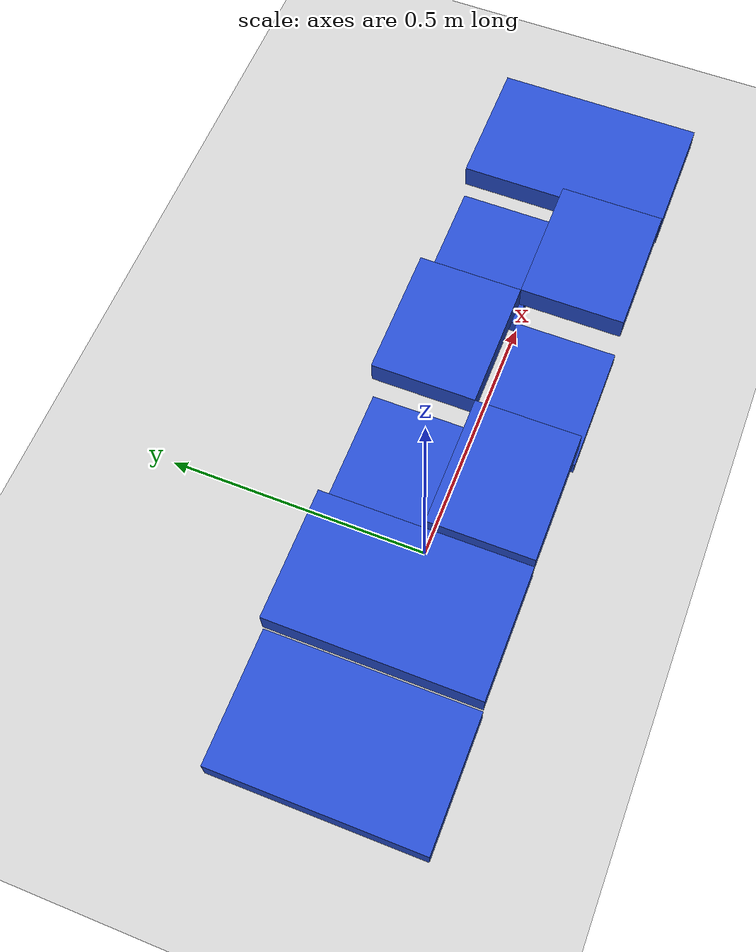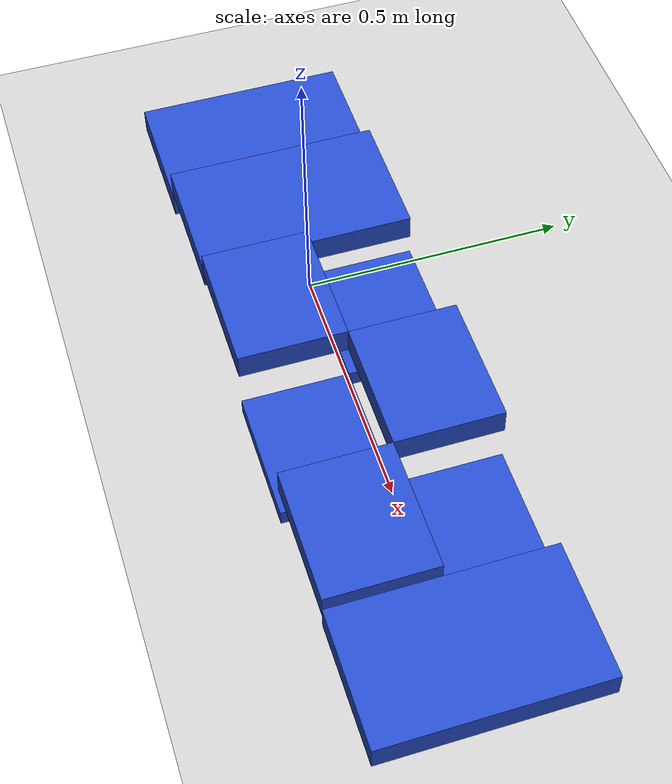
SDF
<?xml version="1.0" ?>
<sdf version="1.4">
    <world name="default">
        <physics type="ode">
            <gravity>0 0 -9.81</gravity>
            <ode>
                <solver>
                    <type>quick</type>
                    <iters>50</iters>
                    <sor>1.4</sor>
                </solver>
                <constraints>
                    <cfm>0.0</cfm>
                    <erp>0.2</erp>
                    <contact_max_correcting_vel>100.0</contact_max_correcting_vel>
                    <contact_surface_layer>0.0</contact_surface_layer>
                </constraints>
            </ode>
            <real_time_update_rate>1000</real_time_update_rate>
            <max_step_size>0.001</max_step_size>
        </physics>
        <!-- A global light source -->
        <include>
            <uri>model://sun</uri>
        </include>
        <!-- A ground plane -->
        <include>
            <uri>model://ground_plane</uri>
        </include>
        <model name="rectangle_6">
            <pose>-0.125000 0.000000 0.095000 0.000000 0.000000 0.000000</pose>
            <static>true</static>
            <link name="rectangle_6_body">
                <inertial>
                    <mass>1.0</mass>
                    <inertia>
                        <ixx>1.0</ixx>
                        <ixy>0.0</ixy>
                        <ixz>0.0</ixz>
                        <iyy>1.0</iyy>
                        <iyz>0.0</iyz>
                        <izz>1.0</izz>
                    </inertia>
                </inertial>
                <collision name="collision">
                    <geometry>
                        <box>
                            <size>0.250000 0.400000 0.050000</size>
                        </box>
                    </geometry>
                    <surface>
                        <friction>
                            <ode>
                                <mu>0.9</mu>
                                <mu2>0.9</mu2>
                            </ode>
                        </friction>
                    </surface>
                </collision>
                <visual name="visual">
                    <geometry>
                        <box>
                            <size>0.250000 0.400000 0.050000</size>
                        </box>
                    </geometry>
                    <material>
                        <script>
                            <uri>file://media/materials/scripts/gazebo.material</uri>
                            <name>Gazebo/Blue</name>
                        </script>
                    </material>
                </visual>
            </link>
        </model>
        <model name="rectangle_8">
            <pose>-0.375000 0.000000 0.035000 0.000000 0.000000 0.000000</pose>
            <static>true</static>
            <link name="rectangle_8_body">
                <inertial>
                    <mass>1.0</mass>
                    <inertia>
                        <ixx>1.0</ixx>
                        <ixy>0.0</ixy>
                        <ixz>0.0</ixz>
                        <iyy>1.0</iyy>
                        <iyz>0.0</iyz>
                        <izz>1.0</izz>
                    </inertia>
                </inertial>
                <collision name="collision">
                    <geometry>
                        <box>
                            <size>0.250000 0.400000 0.050000</size>
                        </box>
                    </geometry>
                    <surface>
                        <friction>
                            <ode>
                                <mu>0.9</mu>
                                <mu2>0.9</mu2>
                            </ode>
                        </friction>
                    </surface>
                </collision>
                <visual name="visual">
                    <geometry>
                        <box>
                            <size>0.250000 0.400000 0.050000</size>
                        </box>
                    </geometry>
                    <material>
                        <script>
                            <uri>file://media/materials/scripts/gazebo.material</uri>
                            <name>Gazebo/Blue</name>
                        </script>
                    </material>
                </visual>
            </link>
        </model>
        <model name="rectangle_0">
            <pose>0.125000 0.100000 0.005000 0.000000 0.000000 0.000000</pose>
            <static>true</static>
            <link name="rectangle_0_body">
                <inertial>
                    <mass>1.0</mass>
                    <inertia>
                        <ixx>1.0</ixx>
                        <ixy>0.0</ixy>
                        <ixz>0.0</ixz>
                        <iyy>1.0</iyy>
                        <iyz>0.0</iyz>
                        <izz>1.0</izz>
                    </inertia>
                </inertial>
                <collision name="collision">
                    <geometry>
                        <box>
                            <size>0.250000 0.200000 0.050000</size>
                        </box>
                    </geometry>
                    <surface>
                        <friction>
                            <ode>
                                <mu>0.9</mu>
                                <mu2>0.9</mu2>
                            </ode>
                        </friction>
                    </surface>
                </collision>
                <visual name="visual">
                    <geometry>
                        <box>
                            <size>0.250000 0.200000 0.050000</size>
                        </box>
                    </geometry>
                    <material>
                        <script>
                            <uri>file://media/materials/scripts/gazebo.material</uri>
                            <name>Gazebo/Blue</name>
                        </script>
                    </material>
                </visual>
            </link>
        </model>
        <model name="rectangle_1">
            <pose>0.125000 -0.100000 0.125000 0.000000 0.000000 0.000000</pose>
            <static>true</static>
            <link name="rectangle_1_body">
                <inertial>
                    <mass>1.0</mass>
                    <inertia>
                        <ixx>1.0</ixx>
                        <ixy>0.0</ixy>
                        <ixz>0.0</ixz>
                        <iyy>1.0</iyy>
                        <iyz>0.0</iyz>
                        <izz>1.0</izz>
                    </inertia>
                </inertial>
                <collision name="collision">
                    <geometry>
                        <box>
                            <size>0.250000 0.200000 0.050000</size>
                        </box>
                    </geometry>
                    <surface>
                        <friction>
                            <ode>
                                <mu>0.9</mu>
                                <mu2>0.9</mu2>
                            </ode>
                        </friction>
                    </surface>
                </collision>
                <visual name="visual">
                    <geometry>
                        <box>
                            <size>0.250000 0.200000 0.050000</size>
                        </box>
                    </geometry>
                    <material>
                        <script>
                            <uri>file://media/materials/scripts/gazebo.material</uri>
                            <name>Gazebo/Blue</name>
                        </script>
                    </material>
                </visual>
            </link>
        </model>
        <model name="rectangle_2">
            <pose>0.375000 0.100000 0.125000 0.000000 0.000000 0.000000</pose>
            <static>true</static>
            <link name="rectangle_2_body">
                <inertial>
                    <mass>1.0</mass>
                    <inertia>
                        <ixx>1.0</ixx>
                        <ixy>0.0</ixy>
                        <ixz>0.0</ixz>
                        <iyy>1.0</iyy>
                        <iyz>0.0</iyz>
                        <izz>1.0</izz>
                    </inertia>
                </inertial>
                <collision name="collision">
                    <geometry>
                        <box>
                            <size>0.250000 0.200000 0.050000</size>
                        </box>
                    </geometry>
                    <surface>
                        <friction>
                            <ode>
                                <mu>0.9</mu>
                                <mu2>0.9</mu2>
                            </ode>
                        </friction>
                    </surface>
                </collision>
                <visual name="visual">
                    <geometry>
                        <box>
                            <size>0.250000 0.200000 0.050000</size>
                        </box>
                    </geometry>
                    <material>
                        <script>
                            <uri>file://media/materials/scripts/gazebo.material</uri>
                            <name>Gazebo/Blue</name>
                        </script>
                    </material>
                </visual>
            </link>
        </model>
        <model name="rectangle_3">
            <pose>0.375000 -0.100000 0.005000 0.000000 0.000000 0.000000</pose>
            <static>true</static>
            <link name="rectangle_3_body">
                <inertial>
                    <mass>1.0</mass>
                    <inertia>
                        <ixx>1.0</ixx>
                        <ixy>0.0</ixy>
                        <ixz>0.0</ixz>
                        <iyy>1.0</iyy>
                        <iyz>0.0</iyz>
                        <izz>1.0</izz>
                    </inertia>
                </inertial>
                <collision name="collision">
                    <geometry>
                        <box>
                            <size>0.250000 0.200000 0.050000</size>
                        </box>
                    </geometry>
                    <surface>
                        <friction>
                            <ode>
                                <mu>0.9</mu>
                                <mu2>0.9</mu2>
                            </ode>
                        </friction>
                    </surface>
                </collision>
                <visual name="visual">
                    <geometry>
                        <box>
                            <size>0.250000 0.200000 0.050000</size>
                        </box>
                    </geometry>
                    <material>
                        <script>
                            <uri>file://media/materials/scripts/gazebo.material</uri>
                            <name>Gazebo/Blue</name>
                        </script>
                    </material>
                </visual>
            </link>
        </model>
        <model name="rectangle_4">
            <pose>0.625000 0.100000 0.005000 0.000000 0.000000 0.000000</pose>
            <static>true</static>
            <link name="rectangle_4_body">
                <inertial>
                    <mass>1.0</mass>
                    <inertia>
                        <ixx>1.0</ixx>
                        <ixy>0.0</ixy>
                        <ixz>0.0</ixz>
                        <iyy>1.0</iyy>
                        <iyz>0.0</iyz>
                        <izz>1.0</izz>
                    </inertia>
                </inertial>
                <collision name="collision">
                    <geometry>
                        <box>
                            <size>0.250000 0.200000 0.050000</size>
                        </box>
                    </geometry>
                    <surface>
                        <friction>
                            <ode>
                                <mu>0.9</mu>
                                <mu2>0.9</mu2>
                            </ode>
                        </friction>
                    </surface>
                </collision>
                <visual name="visual">
                    <geometry>
                        <box>
                            <size>0.250000 0.200000 0.050000</size>
                        </box>
                    </geometry>
                    <material>
                        <script>
                            <uri>file://media/materials/scripts/gazebo.material</uri>
                            <name>Gazebo/Blue</name>
                        </script>
                    </material>
                </visual>
            </link>
        </model>
        <model name="rectangle_5">
            <pose>0.625000 -0.100000 0.125000 0.000000 0.000000 0.000000</pose>
            <static>true</static>
            <link name="rectangle_5_body">
                <inertial>
                    <mass>1.0</mass>
                    <inertia>
                        <ixx>1.0</ixx>
                        <ixy>0.0</ixy>
                        <ixz>0.0</ixz>
                        <iyy>1.0</iyy>
                        <iyz>0.0</iyz>
                        <izz>1.0</izz>
                    </inertia>
                </inertial>
                <collision name="collision">
                    <geometry>
                        <box>
                            <size>0.250000 0.200000 0.050000</size>
                        </box>
                    </geometry>
                    <surface>
                        <friction>
                            <ode>
                                <mu>0.9</mu>
                                <mu2>0.9</mu2>
                            </ode>
                        </friction>
                    </surface>
                </collision>
                <visual name="visual">
                    <geometry>
                        <box>
                            <size>0.250000 0.200000 0.050000</size>
                        </box>
                    </geometry>
                    <material>
                        <script>
                            <uri>file://media/materials/scripts/gazebo.material</uri>
                            <name>Gazebo/Blue</name>
                        </script>
                    </material>
                </visual>
            </link>
        </model>
        <model name="rectangle_7">
            <pose>0.875000 0.000000 0.095000 0.000000 0.000000 0.000000</pose>
            <static>true</static>
            <link name="rectangle_7_body">
                <inertial>
                    <mass>1.0</mass>
                    <inertia>
                        <ixx>1.0</ixx>
                        <ixy>0.0</ixy>
                        <ixz>0.0</ixz>
                        <iyy>1.0</iyy>
                        <iyz>0.0</iyz>
                        <izz>1.0</izz>
                    </inertia>
                </inertial>
                <collision name="collision">
                    <geometry>
                        <box>
                            <size>0.250000 0.400000 0.050000</size>
                        </box>
                    </geometry>
                    <surface>
                        <friction>
                            <ode>
                                <mu>0.9</mu>
                                <mu2>0.9</mu2>
                            </ode>
                        </friction>
                    </surface>
                </collision>
                <visual name="visual">
                    <geometry>
                        <box>
                            <size>0.250000 0.400000 0.050000</size>
                        </box>
                    </geometry>
                    <material>
                        <script>
                            <uri>file://media/materials/scripts/gazebo.material</uri>
                            <name>Gazebo/Blue</name>
                        </script>
                    </material>
                </visual>
            </link>
        </model>
    </world>
</sdf>
